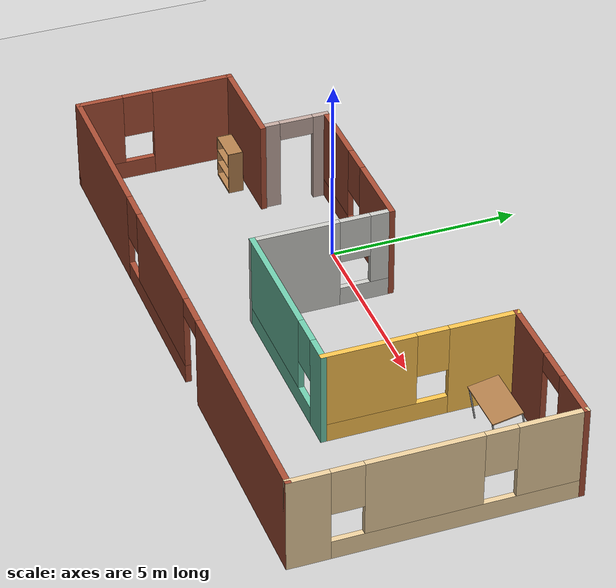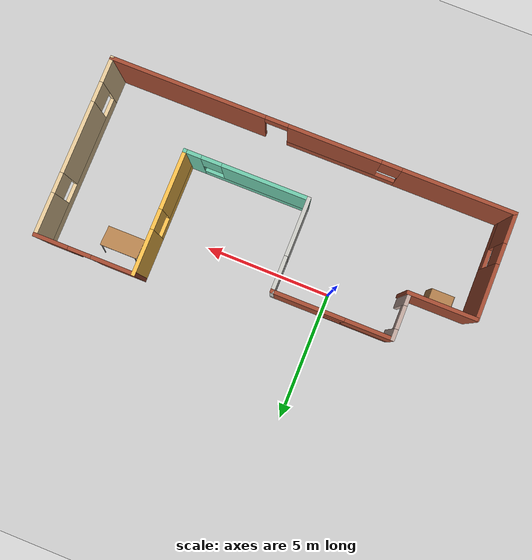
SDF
<sdf version="1.6">
 <world name="default">
  <light name="sun" type="directional">
   <pose>0 0 10 0 -0 0</pose>
   <diffuse>0.8 0.8 0.8 1</diffuse>
   <specular>0.2 0.2 0.2 1</specular>
   <attenuation>
    <range>1000</range>
    <constant>0.9</constant>
    <linear>0.01</linear>
    <quadratic>0.001</quadratic>
   </attenuation>
   <direction>-0.5 0.1 -0.9</direction>
  </light>
  <model name="ground_plane">
   <static>1</static>
   <link name="link">
    <collision name="collision">
     <geometry><plane><normal>0 0 1</normal><size>100 100</size></plane></geometry>
     <surface><friction><ode><mu>100</mu><mu2>50</mu2></ode></friction></surface>
    </collision>
    <visual name="visual">
     <cast_shadows>0</cast_shadows>
     <geometry><plane><normal>0 0 1</normal><size>100 100</size></plane></geometry>
     <material>
      <script><uri>file://media/materials/scripts/gazebo.material</uri><name>Gazebo/Grey</name></script>
     </material>
    </visual>
   </link>
  </model>
  <gravity>0 0 -9.8</gravity>
  <magnetic_field>6e-06 2.3e-05 -4.2e-05</magnetic_field>
  <atmosphere type="adiabatic"/>
  <physics name="default_physics" default="0" type="ode">
   <max_step_size>0.001</max_step_size>
   <real_time_factor>1</real_time_factor>
   <real_time_update_rate>1000</real_time_update_rate>
  </physics>
  <scene><ambient>0.4 0.4 0.4 1</ambient><background>0.7 0.7 0.7 1</background><shadows>1</shadows></scene>
  <spherical_coordinates>
   <surface_model>EARTH_WGS84</surface_model>
   <latitude_deg>0</latitude_deg>
   <longitude_deg>0</longitude_deg>
   <elevation>0</elevation>
   <heading_deg>0</heading_deg>
  </spherical_coordinates>
  <model name="newworld">
   <pose>2.75837 -1.51373 0 0 -0 0</pose>
   <link name="Wall_0">
    <collision name="Wall_0_Collision">
     <geometry><box><size>2.75 0.15 2.5</size></box></geometry>
     <pose>0 0 1.25 0 -0 0</pose>
    </collision>
    <visual name="Wall_0_Visual">
     <pose>0 0 1.25 0 -0 0</pose>
     <geometry><box><size>2.75 0.15 2.5</size></box></geometry>
     <material>
      <script><uri>file://media/materials/scripts/gazebo.material</uri><name>Gazebo/Bricks</name></script>
      <ambient>1 1 1 1</ambient>
     </material>
     <meta><layer>0</layer></meta>
    </visual>
    <pose>-6.625 0.55 0 0 -0 3.14159</pose>
   </link>
   <link name="Wall_10">
    <pose>-5.375 1.5 0 0 0 -1.5708</pose>
    <visual name="Wall_10_Visual_0">
     <pose>-0.652708 0 1.25 0 -0 0</pose>
     <geometry><box><size>0.444585 0.15 2.5</size></box></geometry>
     <material>
      <script><uri>file://media/materials/scripts/gazebo.material</uri><name>Gazebo/Grey</name></script>
      <ambient>0.760784 0.662745 0.627451 1</ambient>
     </material>
     <meta><layer>0</layer></meta>
    </visual>
    <collision name="Wall_10_Collision_0">
     <geometry><box><size>0.444585 0.15 2.5</size></box></geometry>
     <pose>-0.652708 0 1.25 0 -0 0</pose>
    </collision>
    <visual name="Wall_10_Visual_1">
     <pose>0.672292 0 1.25 0 -0 0</pose>
     <geometry><box><size>0.405415 0.15 2.5</size></box></geometry>
     <material>
      <script><uri>file://media/materials/scripts/gazebo.material</uri><name>Gazebo/Grey</name></script>
      <ambient>0.760784 0.662745 0.627451 1</ambient>
     </material>
     <meta><layer>0</layer></meta>
    </visual>
    <collision name="Wall_10_Collision_1">
     <geometry><box><size>0.405415 0.15 2.5</size></box></geometry>
     <pose>0.672292 0 1.25 0 -0 0</pose>
    </collision>
    <visual name="Wall_10_Visual_2">
     <pose>0.019585 0 2.25 0 -0 0</pose>
     <geometry><box><size>0.9 0.15 0.5</size></box></geometry>
     <material>
      <script><uri>file://media/materials/scripts/gazebo.material</uri><name>Gazebo/Grey</name></script>
      <ambient>0.760784 0.662745 0.627451 1</ambient>
     </material>
     <meta><layer>0</layer></meta>
    </visual>
    <collision name="Wall_10_Collision_2">
     <geometry><box><size>0.9 0.15 0.5</size></box></geometry>
     <pose>0.019585 0 2.25 0 -0 0</pose>
    </collision>
   </link>
   <link name="Wall_2">
    <pose>-7.925 -1.5 0 0 0 -1.5708</pose>
    <visual name="Wall_2_Visual_0">
     <pose>-1.02294 0 1.25 0 -0 0</pose>
     <geometry><box><size>2.20412 0.15 2.5</size></box></geometry>
     <material>
      <script><uri>file://media/materials/scripts/gazebo.material</uri><name>Gazebo/Bricks</name></script>
      <ambient>1 1 1 1</ambient>
     </material>
     <meta><layer>0</layer></meta>
    </visual>
    <collision name="Wall_2_Collision_0">
     <geometry><box><size>2.20412 0.15 2.5</size></box></geometry>
     <pose>-1.02294 0 1.25 0 -0 0</pose>
    </collision>
    <visual name="Wall_2_Visual_1">
     <pose>1.10206 0 0.25 0 -0 0</pose>
     <geometry><box><size>2.04588 0.15 0.5</size></box></geometry>
     <material>
      <script><uri>file://media/materials/scripts/gazebo.material</uri><name>Gazebo/Bricks</name></script>
      <ambient>1 1 1 1</ambient>
     </material>
     <meta><layer>0</layer></meta>
    </visual>
    <collision name="Wall_2_Collision_1">
     <geometry><box><size>2.04588 0.15 0.5</size></box></geometry>
     <pose>1.10206 0 0.25 0 -0 0</pose>
    </collision>
    <visual name="Wall_2_Visual_2">
     <pose>1.50206 0 1.5 0 -0 0</pose>
     <geometry><box><size>1.24588 0.15 2</size></box></geometry>
     <material>
      <script><uri>file://media/materials/scripts/gazebo.material</uri><name>Gazebo/Bricks</name></script>
      <ambient>1 1 1 1</ambient>
     </material>
     <meta><layer>0</layer></meta>
    </visual>
    <collision name="Wall_2_Collision_2">
     <geometry><box><size>1.24588 0.15 2</size></box></geometry>
     <pose>1.50206 0 1.5 0 -0 0</pose>
    </collision>
    <visual name="Wall_2_Visual_3">
     <pose>0.479119 0 1.9 0 -0 0</pose>
     <geometry><box><size>0.8 0.15 1.2</size></box></geometry>
     <material>
      <script><uri>file://media/materials/scripts/gazebo.material</uri><name>Gazebo/Bricks</name></script>
      <ambient>1 1 1 1</ambient>
     </material>
     <meta><layer>0</layer></meta>
    </visual>
    <collision name="Wall_2_Collision_3">
     <geometry><box><size>0.8 0.15 1.2</size></box></geometry>
     <pose>0.479119 0 1.9 0 -0 0</pose>
    </collision>
   </link>
   <link name="Wall_3">
    <pose>0 -3.55 0 0 -0 0</pose>
    <visual name="Wall_3_Visual_0">
     <pose>-5.77289 0 1.25 0 -0 0</pose>
     <geometry><box><size>4.45422 0.15 2.5</size></box></geometry>
     <material>
      <script><uri>file://media/materials/scripts/gazebo.material</uri><name>Gazebo/Bricks</name></script>
      <ambient>1 1 1 1</ambient>
     </material>
     <meta><layer>0</layer></meta>
    </visual>
    <collision name="Wall_3_Collision_0">
     <geometry><box><size>4.45422 0.15 2.5</size></box></geometry>
     <pose>-5.77289 0 1.25 0 -0 0</pose>
    </collision>
    <visual name="Wall_3_Visual_1">
     <pose>4.90483 0 1.25 0 -0 0</pose>
     <geometry><box><size>6.19034 0.15 2.5</size></box></geometry>
     <material>
      <script><uri>file://media/materials/scripts/gazebo.material</uri><name>Gazebo/Bricks</name></script>
      <ambient>1 1 1 1</ambient>
     </material>
     <meta><layer>0</layer></meta>
    </visual>
    <collision name="Wall_3_Collision_1">
     <geometry><box><size>6.19034 0.15 2.5</size></box></geometry>
     <pose>4.90483 0 1.25 0 -0 0</pose>
    </collision>
    <visual name="Wall_3_Visual_2">
     <pose>-1.31806 0 0.25 0 -0 0</pose>
     <geometry><box><size>4.45544 0.15 0.5</size></box></geometry>
     <material>
      <script><uri>file://media/materials/scripts/gazebo.material</uri><name>Gazebo/Bricks</name></script>
      <ambient>1 1 1 1</ambient>
     </material>
     <meta><layer>0</layer></meta>
    </visual>
    <collision name="Wall_3_Collision_2">
     <geometry><box><size>4.45544 0.15 0.5</size></box></geometry>
     <pose>-1.31806 0 0.25 0 -0 0</pose>
    </collision>
    <visual name="Wall_3_Visual_3">
     <pose>-0.918059 0 1.5 0 -0 0</pose>
     <geometry><box><size>3.65544 0.15 2</size></box></geometry>
     <material>
      <script><uri>file://media/materials/scripts/gazebo.material</uri><name>Gazebo/Bricks</name></script>
      <ambient>1 1 1 1</ambient>
     </material>
     <meta><layer>0</layer></meta>
    </visual>
    <collision name="Wall_3_Collision_3">
     <geometry><box><size>3.65544 0.15 2</size></box></geometry>
     <pose>-0.918059 0 1.5 0 -0 0</pose>
    </collision>
    <visual name="Wall_3_Visual_4">
     <pose>-3.14578 0 1.9 0 -0 0</pose>
     <geometry><box><size>0.8 0.15 1.2</size></box></geometry>
     <material>
      <script><uri>file://media/materials/scripts/gazebo.material</uri><name>Gazebo/Bricks</name></script>
      <ambient>1 1 1 1</ambient>
     </material>
     <meta><layer>0</layer></meta>
    </visual>
    <collision name="Wall_3_Collision_4">
     <geometry><box><size>0.8 0.15 1.2</size></box></geometry>
     <pose>-3.14578 0 1.9 0 -0 0</pose>
    </collision>
    <visual name="Wall_3_Visual_5">
     <pose>1.35966 0 2.25 0 -0 0</pose>
     <geometry><box><size>0.9 0.15 0.5</size></box></geometry>
     <material>
      <script><uri>file://media/materials/scripts/gazebo.material</uri><name>Gazebo/Bricks</name></script>
      <ambient>1 1 1 1</ambient>
     </material>
     <meta><layer>0</layer></meta>
    </visual>
    <collision name="Wall_3_Collision_5">
     <geometry><box><size>0.9 0.15 0.5</size></box></geometry>
     <pose>1.35966 0 2.25 0 -0 0</pose>
    </collision>
   </link>
   <link name="Wall_4">
    <pose>7.925 0 0 0 -0 1.5708</pose>
    <visual name="Wall_4_Visual_0">
     <pose>-3.09257 0 1.25 0 -0 0</pose>
     <geometry><box><size>1.06486 0.15 2.5</size></box></geometry>
     <material>
      <script><uri>file://media/materials/scripts/gazebo.material</uri><name>Gazebo/Grey</name></script>
      <ambient>0.921569 0.807843 0.615686 1</ambient>
     </material>
     <meta><layer>0</layer></meta>
    </visual>
    <collision name="Wall_4_Collision_0">
     <geometry><box><size>1.06486 0.15 2.5</size></box></geometry>
     <pose>-3.09257 0 1.25 0 -0 0</pose>
    </collision>
    <visual name="Wall_4_Visual_1">
     <pose>0.532429 0 0.25 0 -0 0</pose>
     <geometry><box><size>6.18514 0.15 0.5</size></box></geometry>
     <material>
      <script><uri>file://media/materials/scripts/gazebo.material</uri><name>Gazebo/Grey</name></script>
      <ambient>0.921569 0.807843 0.615686 1</ambient>
     </material>
     <meta><layer>0</layer></meta>
    </visual>
    <collision name="Wall_4_Collision_1">
     <geometry><box><size>6.18514 0.15 0.5</size></box></geometry>
     <pose>0.532429 0 0.25 0 -0 0</pose>
    </collision>
    <visual name="Wall_4_Visual_2">
     <pose>-0.329806 0 1.5 0 -0 0</pose>
     <geometry><box><size>2.86067 0.15 2</size></box></geometry>
     <material>
      <script><uri>file://media/materials/scripts/gazebo.material</uri><name>Gazebo/Grey</name></script>
      <ambient>0.921569 0.807843 0.615686 1</ambient>
     </material>
     <meta><layer>0</layer></meta>
    </visual>
    <collision name="Wall_4_Collision_2">
     <geometry><box><size>2.86067 0.15 2</size></box></geometry>
     <pose>-0.329806 0 1.5 0 -0 0</pose>
    </collision>
    <visual name="Wall_4_Visual_3">
     <pose>2.76276 0 1.5 0 -0 0</pose>
     <geometry><box><size>1.72447 0.15 2</size></box></geometry>
     <material>
      <script><uri>file://media/materials/scripts/gazebo.material</uri><name>Gazebo/Grey</name></script>
      <ambient>0.921569 0.807843 0.615686 1</ambient>
     </material>
     <meta><layer>0</layer></meta>
    </visual>
    <collision name="Wall_4_Collision_3">
     <geometry><box><size>1.72447 0.15 2</size></box></geometry>
     <pose>2.76276 0 1.5 0 -0 0</pose>
    </collision>
    <visual name="Wall_4_Visual_4">
     <pose>-2.16014 0 1.9 0 -0 0</pose>
     <geometry><box><size>0.8 0.15 1.2</size></box></geometry>
     <material>
      <script><uri>file://media/materials/scripts/gazebo.material</uri><name>Gazebo/Grey</name></script>
      <ambient>0.921569 0.807843 0.615686 1</ambient>
     </material>
     <meta><layer>0</layer></meta>
    </visual>
    <collision name="Wall_4_Collision_4">
     <geometry><box><size>0.8 0.15 1.2</size></box></geometry>
     <pose>-2.16014 0 1.9 0 -0 0</pose>
    </collision>
    <visual name="Wall_4_Visual_5">
     <pose>1.50053 0 1.9 0 -0 0</pose>
     <geometry><box><size>0.8 0.15 1.2</size></box></geometry>
     <material>
      <script><uri>file://media/materials/scripts/gazebo.material</uri><name>Gazebo/Grey</name></script>
      <ambient>0.921569 0.807843 0.615686 1</ambient>
     </material>
     <meta><layer>0</layer></meta>
    </visual>
    <collision name="Wall_4_Collision_5">
     <geometry><box><size>0.8 0.15 1.2</size></box></geometry>
     <pose>1.50053 0 1.9 0 -0 0</pose>
    </collision>
   </link>
   <link name="Wall_5">
    <pose>6 3.55 0 0 -0 3.14159</pose>
    <visual name="Wall_5_Visual_0">
     <pose>-1.31846 0 1.25 0 -0 0</pose>
     <geometry><box><size>1.36308 0.15 2.5</size></box></geometry>
     <material>
      <script><uri>file://media/materials/scripts/gazebo.material</uri><name>Gazebo/Bricks</name></script>
      <ambient>1 1 1 1</ambient>
     </material>
     <meta><layer>0</layer></meta>
    </visual>
    <collision name="Wall_5_Collision_0">
     <geometry><box><size>1.36308 0.15 2.5</size></box></geometry>
     <pose>-1.31846 0 1.25 0 -0 0</pose>
    </collision>
    <visual name="Wall_5_Visual_1">
     <pose>1.13154 0 1.25 0 -0 0</pose>
     <geometry><box><size>1.73692 0.15 2.5</size></box></geometry>
     <material>
      <script><uri>file://media/materials/scripts/gazebo.material</uri><name>Gazebo/Bricks</name></script>
      <ambient>1 1 1 1</ambient>
     </material>
     <meta><layer>0</layer></meta>
    </visual>
    <collision name="Wall_5_Collision_1">
     <geometry><box><size>1.73692 0.15 2.5</size></box></geometry>
     <pose>1.13154 0 1.25 0 -0 0</pose>
    </collision>
    <visual name="Wall_5_Visual_2">
     <pose>-0.186917 0 2.25 0 -0 0</pose>
     <geometry><box><size>0.9 0.15 0.5</size></box></geometry>
     <material>
      <script><uri>file://media/materials/scripts/gazebo.material</uri><name>Gazebo/Bricks</name></script>
      <ambient>1 1 1 1</ambient>
     </material>
     <meta><layer>0</layer></meta>
    </visual>
    <collision name="Wall_5_Collision_2">
     <geometry><box><size>0.9 0.15 0.5</size></box></geometry>
     <pose>-0.186917 0 2.25 0 -0 0</pose>
    </collision>
   </link>
   <link name="Wall_6">
    <pose>4.075 1.125 0 0 0 -1.5708</pose>
    <visual name="Wall_6_Visual_0">
     <pose>-1.59754 0 1.25 0 -0 0</pose>
     <geometry><box><size>1.80493 0.15 2.5</size></box></geometry>
     <material>
      <script><uri>file://media/materials/scripts/gazebo.material</uri><name>Gazebo/Grey</name></script>
      <ambient>1 0.764706 0.305882 1</ambient>
     </material>
     <meta><layer>0</layer></meta>
    </visual>
    <collision name="Wall_6_Collision_0">
     <geometry><box><size>1.80493 0.15 2.5</size></box></geometry>
     <pose>-1.59754 0 1.25 0 -0 0</pose>
    </collision>
    <visual name="Wall_6_Visual_1">
     <pose>0.902463 0 0.25 0 -0 0</pose>
     <geometry><box><size>3.19507 0.15 0.5</size></box></geometry>
     <material>
      <script><uri>file://media/materials/scripts/gazebo.material</uri><name>Gazebo/Grey</name></script>
      <ambient>1 0.764706 0.305882 1</ambient>
     </material>
     <meta><layer>0</layer></meta>
    </visual>
    <collision name="Wall_6_Collision_1">
     <geometry><box><size>3.19507 0.15 0.5</size></box></geometry>
     <pose>0.902463 0 0.25 0 -0 0</pose>
    </collision>
    <visual name="Wall_6_Visual_2">
     <pose>1.30246 0 1.5 0 -0 0</pose>
     <geometry><box><size>2.39507 0.15 2</size></box></geometry>
     <material>
      <script><uri>file://media/materials/scripts/gazebo.material</uri><name>Gazebo/Grey</name></script>
      <ambient>1 0.764706 0.305882 1</ambient>
     </material>
     <meta><layer>0</layer></meta>
    </visual>
    <collision name="Wall_6_Collision_2">
     <geometry><box><size>2.39507 0.15 2</size></box></geometry>
     <pose>1.30246 0 1.5 0 -0 0</pose>
    </collision>
    <visual name="Wall_6_Visual_3">
     <pose>-0.295074 0 1.9 0 -0 0</pose>
     <geometry><box><size>0.8 0.15 1.2</size></box></geometry>
     <material>
      <script><uri>file://media/materials/scripts/gazebo.material</uri><name>Gazebo/Grey</name></script>
      <ambient>1 0.764706 0.305882 1</ambient>
     </material>
     <meta><layer>0</layer></meta>
    </visual>
    <collision name="Wall_6_Collision_3">
     <geometry><box><size>0.8 0.15 1.2</size></box></geometry>
     <pose>-0.295074 0 1.9 0 -0 0</pose>
    </collision>
   </link>
   <link name="Wall_7">
    <pose>1.65 -1.3 0 0 -0 3.14159</pose>
    <visual name="Wall_7_Visual_0">
     <pose>-2.13954 0 1.25 0 -0 0</pose>
     <geometry><box><size>0.720913 0.15 2.5</size></box></geometry>
     <material>
      <script><uri>file://media/materials/scripts/gazebo.material</uri><name>Gazebo/Grey</name></script>
      <ambient>0.435294 0.796078 0.67451 1</ambient>
     </material>
     <meta><layer>0</layer></meta>
    </visual>
    <collision name="Wall_7_Collision_0">
     <geometry><box><size>0.720913 0.15 2.5</size></box></geometry>
     <pose>-2.13954 0 1.25 0 -0 0</pose>
    </collision>
    <visual name="Wall_7_Visual_1">
     <pose>0.360457 0 0.25 0 -0 0</pose>
     <geometry><box><size>4.27909 0.15 0.5</size></box></geometry>
     <material>
      <script><uri>file://media/materials/scripts/gazebo.material</uri><name>Gazebo/Grey</name></script>
      <ambient>0.435294 0.796078 0.67451 1</ambient>
     </material>
     <meta><layer>0</layer></meta>
    </visual>
    <collision name="Wall_7_Collision_1">
     <geometry><box><size>4.27909 0.15 0.5</size></box></geometry>
     <pose>0.360457 0 0.25 0 -0 0</pose>
    </collision>
    <visual name="Wall_7_Visual_2">
     <pose>0.760457 0 1.5 0 -0 0</pose>
     <geometry><box><size>3.47909 0.15 2</size></box></geometry>
     <material>
      <script><uri>file://media/materials/scripts/gazebo.material</uri><name>Gazebo/Grey</name></script>
      <ambient>0.435294 0.796078 0.67451 1</ambient>
     </material>
     <meta><layer>0</layer></meta>
    </visual>
    <collision name="Wall_7_Collision_2">
     <geometry><box><size>3.47909 0.15 2</size></box></geometry>
     <pose>0.760457 0 1.5 0 -0 0</pose>
    </collision>
    <visual name="Wall_7_Visual_3">
     <pose>-1.37909 0 1.9 0 -0 0</pose>
     <geometry><box><size>0.8 0.15 1.2</size></box></geometry>
     <material>
      <script><uri>file://media/materials/scripts/gazebo.material</uri><name>Gazebo/Grey</name></script>
      <ambient>0.435294 0.796078 0.67451 1</ambient>
     </material>
     <meta><layer>0</layer></meta>
    </visual>
    <collision name="Wall_7_Collision_3">
     <geometry><box><size>0.8 0.15 1.2</size></box></geometry>
     <pose>-1.37909 0 1.9 0 -0 0</pose>
    </collision>
   </link>
   <link name="Wall_8">
    <pose>-0.775 0.5 0 0 -0 1.5708</pose>
    <visual name="Wall_8_Visual_0">
     <pose>-0.71769 0 1.25 0 -0 0</pose>
     <geometry><box><size>2.31462 0.15 2.5</size></box></geometry>
     <material>
      <script><uri>file://media/materials/scripts/gazebo.material</uri><name>Gazebo/CeilingTiled</name></script>
      <ambient>0.435294 0.796078 0.67451 1</ambient>
     </material>
     <meta><layer>0</layer></meta>
    </visual>
    <collision name="Wall_8_Collision_0">
     <geometry><box><size>2.31462 0.15 2.5</size></box></geometry>
     <pose>-0.71769 0 1.25 0 -0 0</pose>
    </collision>
    <visual name="Wall_8_Visual_1">
     <pose>1.15731 0 0.25 0 -0 0</pose>
     <geometry><box><size>1.43538 0.15 0.5</size></box></geometry>
     <material>
      <script><uri>file://media/materials/scripts/gazebo.material</uri><name>Gazebo/CeilingTiled</name></script>
      <ambient>0.435294 0.796078 0.67451 1</ambient>
     </material>
     <meta><layer>0</layer></meta>
    </visual>
    <collision name="Wall_8_Collision_1">
     <geometry><box><size>1.43538 0.15 0.5</size></box></geometry>
     <pose>1.15731 0 0.25 0 -0 0</pose>
    </collision>
    <visual name="Wall_8_Visual_2">
     <pose>1.55731 0 1.5 0 -0 0</pose>
     <geometry><box><size>0.63538 0.15 2</size></box></geometry>
     <material>
      <script><uri>file://media/materials/scripts/gazebo.material</uri><name>Gazebo/CeilingTiled</name></script>
      <ambient>0.435294 0.796078 0.67451 1</ambient>
     </material>
     <meta><layer>0</layer></meta>
    </visual>
    <collision name="Wall_8_Collision_2">
     <geometry><box><size>0.63538 0.15 2</size></box></geometry>
     <pose>1.55731 0 1.5 0 -0 0</pose>
    </collision>
    <visual name="Wall_8_Visual_3">
     <pose>0.83962 0 1.9 0 -0 0</pose>
     <geometry><box><size>0.8 0.15 1.2</size></box></geometry>
     <material>
      <script><uri>file://media/materials/scripts/gazebo.material</uri><name>Gazebo/CeilingTiled</name></script>
      <ambient>0.435294 0.796078 0.67451 1</ambient>
     </material>
     <meta><layer>0</layer></meta>
    </visual>
    <collision name="Wall_8_Collision_3">
     <geometry><box><size>0.8 0.15 1.2</size></box></geometry>
     <pose>0.83962 0 1.9 0 -0 0</pose>
    </collision>
   </link>
   <link name="Wall_9">
    <pose>-3.075 2.3 0 0 -0 3.14159</pose>
    <visual name="Wall_9_Visual_0">
     <pose>-1.35211 0 1.25 0 -0 0</pose>
     <geometry><box><size>2.04578 0.15 2.5</size></box></geometry>
     <material>
      <script><uri>file://media/materials/scripts/gazebo.material</uri><name>Gazebo/Bricks</name></script>
      <ambient>1 1 1 1</ambient>
     </material>
     <meta><layer>0</layer></meta>
    </visual>
    <collision name="Wall_9_Collision_0">
     <geometry><box><size>2.04578 0.15 2.5</size></box></geometry>
     <pose>-1.35211 0 1.25 0 -0 0</pose>
    </collision>
    <visual name="Wall_9_Visual_1">
     <pose>1.02289 0 0.25 0 -0 0</pose>
     <geometry><box><size>2.70422 0.15 0.5</size></box></geometry>
     <material>
      <script><uri>file://media/materials/scripts/gazebo.material</uri><name>Gazebo/Bricks</name></script>
      <ambient>1 1 1 1</ambient>
     </material>
     <meta><layer>0</layer></meta>
    </visual>
    <collision name="Wall_9_Collision_1">
     <geometry><box><size>2.70422 0.15 0.5</size></box></geometry>
     <pose>1.02289 0 0.25 0 -0 0</pose>
    </collision>
    <visual name="Wall_9_Visual_2">
     <pose>1.42289 0 1.5 0 -0 0</pose>
     <geometry><box><size>1.90422 0.15 2</size></box></geometry>
     <material>
      <script><uri>file://media/materials/scripts/gazebo.material</uri><name>Gazebo/Bricks</name></script>
      <ambient>1 1 1 1</ambient>
     </material>
     <meta><layer>0</layer></meta>
    </visual>
    <collision name="Wall_9_Collision_2">
     <geometry><box><size>1.90422 0.15 2</size></box></geometry>
     <pose>1.42289 0 1.5 0 -0 0</pose>
    </collision>
    <visual name="Wall_9_Visual_3">
     <pose>0.07078 0 1.9 0 -0 0</pose>
     <geometry><box><size>0.8 0.15 1.2</size></box></geometry>
     <material>
      <script><uri>file://media/materials/scripts/gazebo.material</uri><name>Gazebo/Bricks</name></script>
      <ambient>1 1 1 1</ambient>
     </material>
     <meta><layer>0</layer></meta>
    </visual>
    <collision name="Wall_9_Collision_3">
     <geometry><box><size>0.8 0.15 1.2</size></box></geometry>
     <pose>0.07078 0 1.9 0 -0 0</pose>
    </collision>
   </link>
   <static>1</static>
  </model>
  <model name="bookshelf">
   <static>1</static>
   <link name="link">
    <inertial><mass>1</mass></inertial>
    <collision name="back">
     <pose>0 0.005 0.6 0 -0 0</pose>
     <geometry><box><size>0.9 0.01 1.2</size></box></geometry>
    </collision>
    <visual name="visual1">
     <pose>0 0.005 0.6 0 -0 0</pose>
     <geometry><box><size>0.9 0.01 1.2</size></box></geometry>
     <material>
      <script><uri>file://media/materials/scripts/gazebo.material</uri><name>Gazebo/Wood</name></script>
     </material>
    </visual>
    <collision name="left_side">
     <pose>0.45 -0.195 0.6 0 -0 0</pose>
     <geometry><box><size>0.02 0.4 1.2</size></box></geometry>
    </collision>
    <visual name="visual2">
     <pose>0.45 -0.195 0.6 0 -0 0</pose>
     <geometry><box><size>0.02 0.4 1.2</size></box></geometry>
     <material>
      <script><uri>file://media/materials/scripts/gazebo.material</uri><name>Gazebo/Wood</name></script>
     </material>
    </visual>
    <collision name="right_side">
     <pose>-0.45 -0.195 0.6 0 -0 0</pose>
     <geometry><box><size>0.02 0.4 1.2</size></box></geometry>
    </collision>
    <visual name="visual3">
     <pose>-0.45 -0.195 0.6 0 -0 0</pose>
     <geometry><box><size>0.02 0.4 1.2</size></box></geometry>
     <material>
      <script><uri>file://media/materials/scripts/gazebo.material</uri><name>Gazebo/Wood</name></script>
     </material>
    </visual>
    <collision name="bottom">
     <pose>0 -0.195 0.03 0 -0 0</pose>
     <geometry><box><size>0.88 0.4 0.06</size></box></geometry>
    </collision>
    <visual name="visual4">
     <pose>0 -0.195 0.03 0 -0 0</pose>
     <geometry><box><size>0.88 0.4 0.06</size></box></geometry>
     <material>
      <script><uri>file://media/materials/scripts/gazebo.material</uri><name>Gazebo/Wood</name></script>
     </material>
    </visual>
    <collision name="top">
     <pose>0 -0.195 1.19 0 -0 0</pose>
     <geometry><box><size>0.88 0.4 0.02</size></box></geometry>
    </collision>
    <visual name="visual5">
     <pose>0 -0.195 1.19 0 -0 0</pose>
     <geometry><box><size>0.88 0.4 0.02</size></box></geometry>
     <material>
      <script><uri>file://media/materials/scripts/gazebo.material</uri><name>Gazebo/Wood</name></script>
     </material>
    </visual>
    <collision name="low_shelf">
     <pose>0 -0.195 0.43 0 -0 0</pose>
     <geometry><box><size>0.88 0.4 0.02</size></box></geometry>
    </collision>
    <visual name="visual6">
     <pose>0 -0.195 0.43 0 -0 0</pose>
     <geometry><box><size>0.88 0.4 0.02</size></box></geometry>
     <material>
      <script><uri>file://media/materials/scripts/gazebo.material</uri><name>Gazebo/Wood</name></script>
     </material>
    </visual>
    <collision name="high_shelf">
     <pose>0 -0.195 0.8 0 -0 0</pose>
     <geometry><box><size>0.88 0.4 0.02</size></box></geometry>
    </collision>
    <visual name="visual7">
     <pose>0 -0.195 0.8 0 -0 0</pose>
     <geometry><box><size>0.88 0.4 0.02</size></box></geometry>
     <material>
      <script><uri>file://media/materials/scripts/gazebo.material</uri><name>Gazebo/Wood</name></script>
     </material>
    </visual>
   </link>
   <pose>-3.93955 -1.19785 0 0 -0 0</pose>
  </model>
  <model name="table">
   <static>1</static>
   <link name="link">
    <collision name="surface">
     <pose>0 0 1 0 -0 0</pose>
     <geometry><box><size>1.5 0.8 0.03</size></box></geometry>
     <surface><friction><ode><mu>0.6</mu><mu2>0.6</mu2></ode></friction></surface>
    </collision>
    <visual name="visual1">
     <pose>0 0 1 0 -0 0</pose>
     <geometry><box><size>1.5 0.8 0.03</size></box></geometry>
     <material>
      <script><uri>file://media/materials/scripts/gazebo.material</uri><name>Gazebo/Wood</name></script>
     </material>
    </visual>
    <collision name="front_left_leg">
     <pose>0.68 0.38 0.5 0 -0 0</pose>
     <geometry><cylinder><radius>0.02</radius><length>1</length></cylinder></geometry>
    </collision>
    <visual name="front_left_leg">
     <pose>0.68 0.38 0.5 0 -0 0</pose>
     <geometry><cylinder><radius>0.02</radius><length>1</length></cylinder></geometry>
     <material>
      <script><uri>file://media/materials/scripts/gazebo.material</uri><name>Gazebo/Grey</name></script>
     </material>
    </visual>
    <collision name="front_right_leg">
     <pose>0.68 -0.38 0.5 0 -0 0</pose>
     <geometry><cylinder><radius>0.02</radius><length>1</length></cylinder></geometry>
    </collision>
    <visual name="front_right_leg">
     <pose>0.68 -0.38 0.5 0 -0 0</pose>
     <geometry><cylinder><radius>0.02</radius><length>1</length></cylinder></geometry>
     <material>
      <script><uri>file://media/materials/scripts/gazebo.material</uri><name>Gazebo/Grey</name></script>
     </material>
    </visual>
    <collision name="back_right_leg">
     <pose>-0.68 -0.38 0.5 0 -0 0</pose>
     <geometry><cylinder><radius>0.02</radius><length>1</length></cylinder></geometry>
    </collision>
    <visual name="back_right_leg">
     <pose>-0.68 -0.38 0.5 0 -0 0</pose>
     <geometry><cylinder><radius>0.02</radius><length>1</length></cylinder></geometry>
     <material>
      <script><uri>file://media/materials/scripts/gazebo.material</uri><name>Gazebo/Grey</name></script>
     </material>
    </visual>
    <collision name="back_left_leg">
     <pose>-0.68 0.38 0.5 0 -0 0</pose>
     <geometry><cylinder><radius>0.02</radius><length>1</length></cylinder></geometry>
    </collision>
    <visual name="back_left_leg">
     <pose>-0.68 0.38 0.5 0 -0 0</pose>
     <geometry><cylinder><radius>0.02</radius><length>1</length></cylinder></geometry>
     <material>
      <script><uri>file://media/materials/scripts/gazebo.material</uri><name>Gazebo/Grey</name></script>
     </material>
    </visual>
   </link>
   <pose>7.97456 1.23502 0 0.178083 -0 0</pose>
  </model>
 </world>
</sdf>
